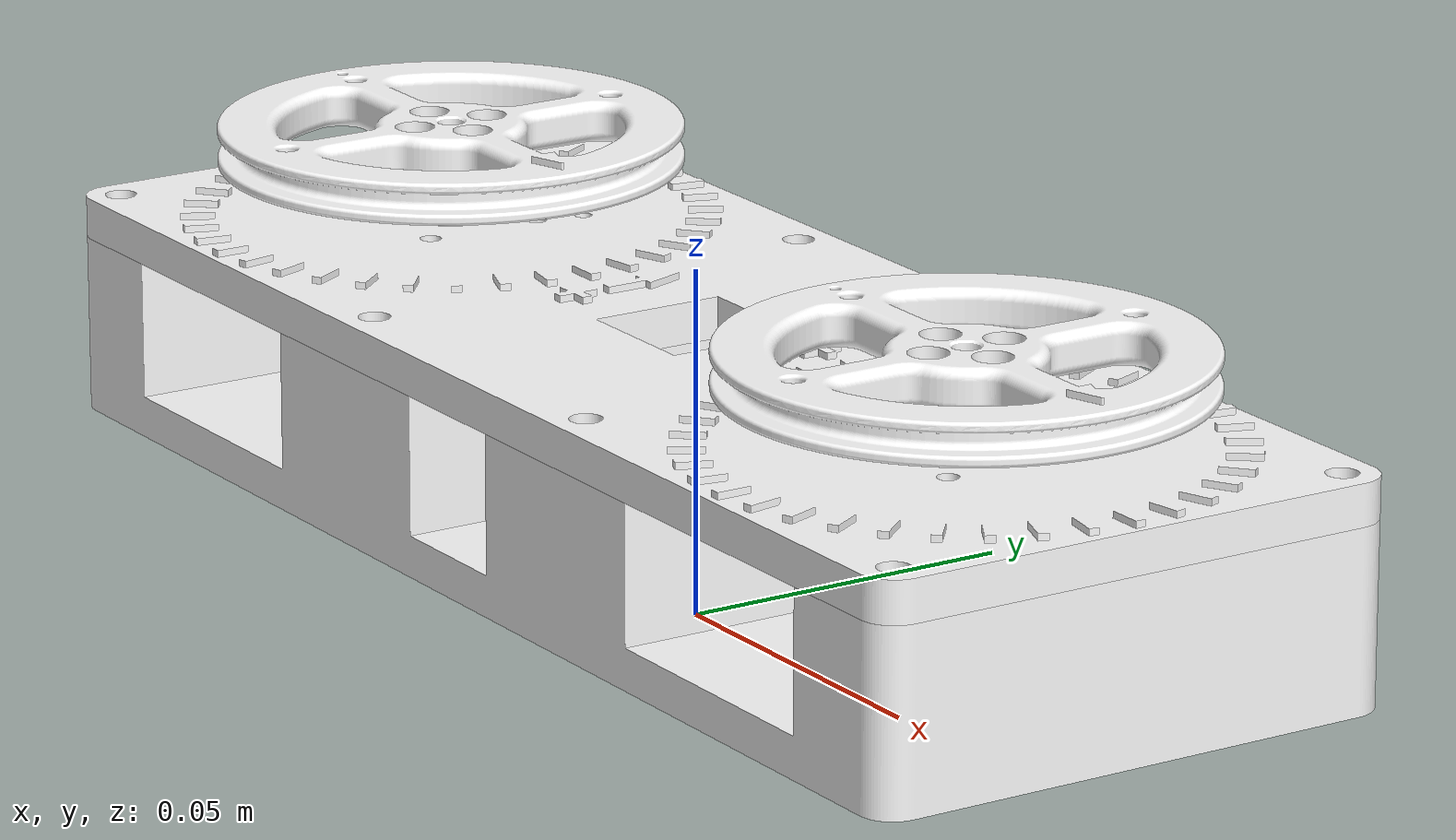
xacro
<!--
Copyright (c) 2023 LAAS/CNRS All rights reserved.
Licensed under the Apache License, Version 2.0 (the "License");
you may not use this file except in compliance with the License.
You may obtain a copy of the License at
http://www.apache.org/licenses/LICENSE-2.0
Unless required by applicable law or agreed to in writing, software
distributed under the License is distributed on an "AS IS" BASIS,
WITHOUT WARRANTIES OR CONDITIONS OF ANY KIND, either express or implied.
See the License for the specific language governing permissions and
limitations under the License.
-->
<?xml version="1.0"?>
<robot  xmlns:xacro="http://ros.org/wiki/xacro"
        name="odri_dual_motor_testbed" >

  <xacro:arg name="use_sim" default="true"/>

  <!-- Generic simulator_gazebo plugins -->
  <xacro:include filename="$(find odri_dual_motor_testbed_description)/gazebo/gazebo.urdf.xacro" />

  <!-- ros2_control -->
  <xacro:include filename="$(find odri_dual_motor_testbed_description)/ros2_control/system_dual_motor_testbed.ros2_control.xacro" />
  <xacro:odri_dual_motor_testbed_ros2_control
      use_sim="$(arg use_sim)" name="odri_dm_tb_kt"/>

  <link name="world"/>

  <xacro:include filename="$(find odri_dual_motor_testbed_description)/urdf/base.urdf.xacro" />
  <xacro:odri_dual_motor_testbed_kin_tree
    name="odri_dm_tb_kt" parent="world" />

</robot>

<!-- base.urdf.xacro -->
<robot xmlns:xacro="http://ros.org/wiki/xacro">

  <xacro:include filename="$(find odri_dual_motor_testbed_description)/urdf/wheel.urdf.xacro" />

  <xacro:macro name="odri_dual_motor_testbed_kin_tree" params="name parent">

    <!--   BASE    -->
    <link name="base_footprint">
      <inertial>
        <origin xyz="0.0 0.0 0.011447" rpy="0.00000 0.00000 0.00000"/>
        <mass value="0.250"/>
        <inertia ixx="0.000147" ixy="0.0" ixz="0.0"
                 iyy="0.000948" iyz="0.0"
                 izz="0.001064"/>
      </inertial>
      <visual>
        <origin xyz="0 0 0" rpy="0 0 0" />
        <geometry>
          <mesh filename="package://odri_dual_motor_testbed_description/meshes/dual_motor_testbed_base_v2.stl" />
        </geometry>
        <material name="white">
          <color rgba="1.0 1.0 1.0 1.0"/>
        </material>

      </visual>
      <collision>
        <origin xyz="0 0 0" rpy="0 0 0" />
        <geometry>
          <mesh filename="package://odri_dual_motor_testbed_description/meshes/dual_motor_testbed_base_v2.stl" />
        </geometry>
      </collision>
    </link>

    <joint name="${name}_in_${parent}" type="fixed">
      <parent link="${parent}" />
      <child link="base_footprint" />
      <origin xyz="0.0 0.0 0.01" rpy ="0.0 0.0 0.0"/>
    </joint>

    <joint name="${name}_1_joint" type="fixed">
      <parent link="base_footprint" />
      <child link="${name}_2_link" />
      <origin xyz="0.0 0.0 0.0" rpy ="0.0 0.0 0.0"/>
    </joint>

    <link name="${name}_2_link">
      <inertial>
        <origin xyz="0.0 0.0 0.029025" rpy="0.00000 0.00000 0.00000"/>
        <mass value="1.563428"/>
        <inertia ixx="0.000870" ixy="0.0" ixz="0.0"
                 iyy="0.005844" iyz="0.0"
                 izz="0.006705"/>
      </inertial>
      <visual>
        <origin xyz="0 0 0" rpy="0 0 0" />
        <geometry>
          <mesh filename="package://odri_dual_motor_testbed_description/meshes/dual_motor_testbed_cover_v2.stl" />
        </geometry>
        <material name="white">
          <color rgba="1.0 1.0 1.0 1.0"/>
        </material>
      </visual>
      <collision>
        <origin xyz="0 0 0" rpy="0 0 0" />
        <geometry>
          <mesh filename="package://odri_dual_motor_testbed_description/meshes/dual_motor_testbed_cover_v2.stl" />
        </geometry>
      </collision>
    </link>

    <xacro:odri_dual_motor_testbed_wheel name="${name}" parent="${name}_2_link" prefix="left" reflect="1" />

    <xacro:odri_dual_motor_testbed_wheel name="${name}" parent="${name}_2_link" prefix="right" reflect="-1" />

  </xacro:macro>

</robot>

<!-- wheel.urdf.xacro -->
<robot xmlns:xacro="http://ros.org/wiki/xacro">

  <xacro:macro name="odri_dual_motor_testbed_wheel" params="name parent prefix reflect">

    <joint name="${name}_${prefix}_joint" type="revolute">
      <parent link="${parent}" />
      <child link="${name}_${prefix}_3_link" />
      <origin xyz="${reflect * 0.065} 0.0 0.03" rpy ="0.0 0.0 0.0"/>
      <axis xyz="0 0 1" />
      <limit effort="30" velocity="1.0" lower="-3.14" upper="3.14" />
    </joint>

    <link name="${name}_${prefix}_3_link">
      <inertial>
        <origin xyz="0.0 0.0 -0.001346" rpy="0.00000 0.00000 0.00000"/>
        <mass value="0.050"/>
        <inertia ixx="1.517e-06" ixy="0.0" ixz="0.0"
                 iyy="1.469e-06" iyz="0.0"
                 izz="9.870e-07"/>
      </inertial>
      <visual>
        <origin xyz="0 0 0" rpy="0 0 0" />
        <geometry>
          <mesh filename="package://odri_dual_motor_testbed_description/meshes/encoder_code_wheel_mount_v2.stl" />
        </geometry>
        <material name="white">
          <color rgba="1.0 1.0 1.0 1.0"/>
        </material>
      </visual>
      <collision>
        <origin xyz="0 0 0" rpy="0 0 0" />
        <geometry>
          <mesh filename="package://odri_dual_motor_testbed_description/meshes/encoder_code_wheel_mount_v2.stl" />
        </geometry>
      </collision>
    </link>

    <joint name="${name}_${prefix}_4_joint" type="fixed">
      <parent link="${name}_${prefix}_3_link" />
      <child link="${name}_${prefix}_4_link" />
      <origin xyz="0.0 0.0 0.01" rpy ="0.0 0.0 0.0"/>
      <axis xyz="0 0 1" />
    </joint>

    <link name="${name}_${prefix}_4_link">
      <inertial>
        <origin xyz="0.0 0.0 0.002973" rpy="0.00000 0.00000 0.00000"/>
        <mass value="0.050"/>
        <inertia ixx="1.558e-05" ixy="0.0" ixz="0.0"
                 iyy="1.574e-05" iyz="0.0"
                 izz="3.099e-05"/>
      </inertial>
      <visual>
        <origin xyz="0 0 0" rpy="0 0 0" />
        <geometry>
          <mesh filename="package://odri_dual_motor_testbed_description/meshes/hand_wheel_v2.stl" />
        </geometry>
        <material name="white">
          <color rgba="1.0 1.0 1.0 1.0"/>
        </material>

      </visual>
      <collision>
        <origin xyz="0 0 0" rpy="0 0 0" />
        <geometry>
          <mesh filename="package://odri_dual_motor_testbed_description/meshes/hand_wheel_v2.stl" />
        </geometry>
      </collision>
    </link>

  </xacro:macro>
</robot>
